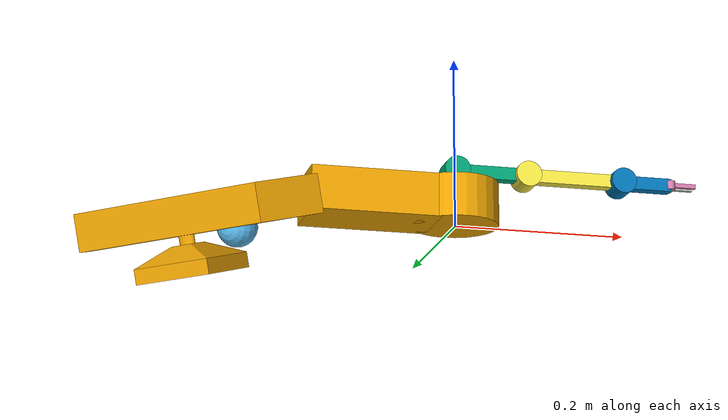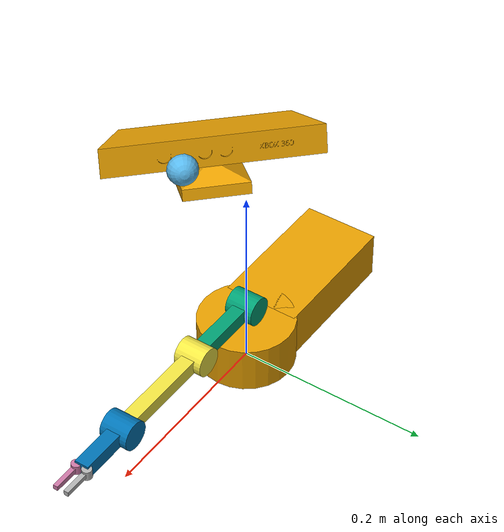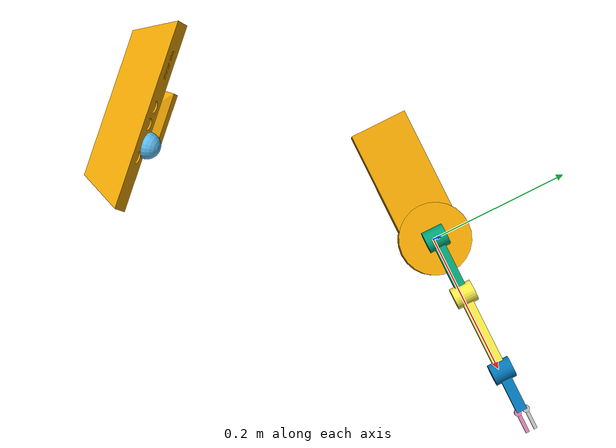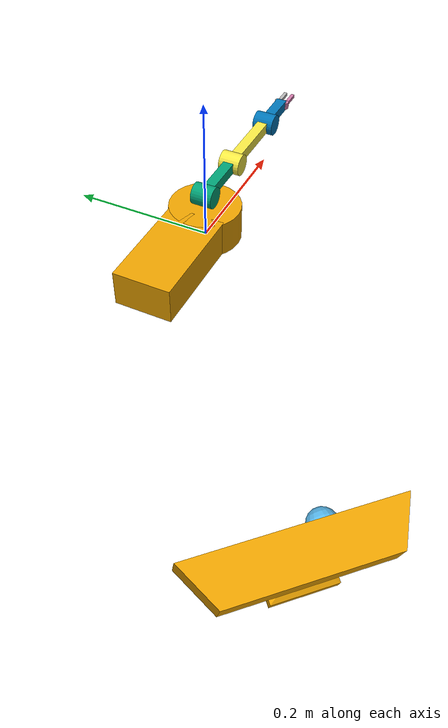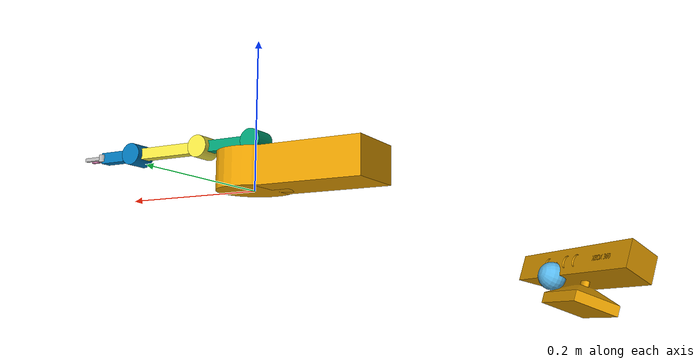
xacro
<?xml version="1.0" ?>

<robot name="owi" xmlns:xacro="http://www.ros.org/wiki/xacro">

  <!-- Macro to generate a link for manipulator, using reference frame of previous joint -->
  <xacro:macro name="alink" params="name radial=0 axial=0 w=0.03" >
    <link name="${name}">
      <!-- elbow -->
      <visual>
        <geometry>
          <cylinder length="${w}" radius="${w/2}" />
        </geometry>
        <origin rpy="0 0 0" xyz="0 0 0" />
      </visual>
      <collision>
        <geometry>
          <cylinder length="${w}" radius="${w/2}" />
        </geometry>
        <origin rpy="0 0 0" xyz="0 0 0" />
      </collision>
      <!-- axial -->
      <visual>
        <geometry>
          <box size="${w/2} ${w/2} ${axial}" />
        </geometry>
        <origin rpy="0 0 0" xyz="0 0 ${axial/2}" />
      </visual>
      <collision>
        <geometry>
          <box size="${w/2} ${w/2} ${axial/2}" />
        </geometry>
        <origin rpy="0 0 0" xyz="0 0 ${axial/2}" />
      </collision>
      <!-- radial -->
      <visual>
        <geometry>
          <box size="${radial} ${w/2} ${w/2}" />
        </geometry>
        <origin rpy="0 0 0" xyz="${radial/2} 0 ${axial}" />
      </visual>
      <collision>
        <geometry>
          <box size="${radial} ${w/2} ${w/2}" />
        </geometry>
        <origin rpy="0 0 0" xyz="${radial/2} 0 ${axial}" />
      </collision>
      <intnertial>
        <mass value="0.1"/>
        <inertia ixx="0.033" iyy="0.033" izz="0.033" ixy="0.0" ixz="0.0" iyz="0.0"/>
      </intnertial>
    </link>
  </xacro:macro>

  <!-- Macro to generate a joint on D-H convention, using reference frame of previous joint -->
  <!-- Assume position theta* = 0, radial and twist are along/around parent x axis -->
  <!-- Use degree for angle -->
  <xacro:macro name="ajoint" params="type parent child radial=0 axial=0 twist=0 lo_limit=-180 hi_limit=180 effort=100 velocity=1 mimic=none">
    <joint name="joint${child}" type="${type}">
      <parent link="${parent}" />
      <child link="${child}" />
      <axis xyz="0 0 1" />
      <origin rpy="${pi*twist/180} 0 0" xyz="${radial} 0 ${axial}" />
      <!-- revolute joint -->
      <xacro:if value="${type == 'revolute'}">
        <limit effort="${effort}" lower="${pi*lo_limit/180}" upper="${pi*hi_limit/180}" velocity="${velocity}" />
      </xacro:if>
      <!-- prismatic joint -->
      <xacro:if value="${type == 'prismatic'}">
        <limit effort="${effort}" lower="${lo_limit}" upper="${hi_limit}" velocity="${velocity}" />
      </xacro:if>
      <!-- mimic joint -->
      <xacro:if value="${mimic != 'none'}">
        <mimic joint="${mimic}" />
      </xacro:if>
    </joint>
  </xacro:macro>

  <!-- robot model  -->
  <link name="base_link">
    <visual>
      <geometry>
        <cylinder length="0.05" radius="0.05" />
      </geometry>
      <origin rpy="0 0 0" xyz="0 0 0.025" />
    </visual>

    <visual>
      <geometry>
        <box size="0.15 0.08 0.05" />
      </geometry>
      <origin rpy="0 0 0" xyz="-0.1 0 0.025" />
    </visual>

    <collision>
      <geometry>
        <cylinder length="0.04" radius="0.05" />
      </geometry>
      <origin rpy="0 0 0" xyz="0 0 0.025" />
    </collision>

    <collision>
      <geometry>
        <box size="0.15 0.08 0.08" />
      </geometry>
      <origin rpy="0 0 0" xyz="-0.1 0 0.04" />
    </collision>

    <intnertial>
      <mass value="0.3"/>
      <inertia ixx="0.1" iyy="0.1" izz="0.1" ixy="0.0" ixz="0.0" iyz="0.0"/>
    </intnertial>
  </link>

  <xacro:ajoint type="revolute" parent="base_link" child="Link1" axial="0.065" lo_limit="-90" hi_limit="90" />
  <link name="Link1" />

  <xacro:ajoint type="revolute" parent="Link1" child="Link2" twist="90" lo_limit="0" hi_limit="180" />

  <xacro:alink name="Link2" radial="0.085" />

  <xacro:ajoint type="revolute" parent="Link2" child="Link3" radial="0.085" lo_limit="-135" hi_limit="135" />

  <xacro:alink name="Link3" radial="0.115" />

  <xacro:ajoint type="revolute" parent="Link3" child="Link4" radial="0.115" lo_limit="-60" hi_limit="60" />

  <xacro:alink name="Link4" radial="0.06" />

  <joint name="dummy_joint" type="revolute">
    <parent link="Link4" />
    <child link="dummy_eef" />
    <axis xyz="0 0 1" />
    <origin rpy="${0.5*pi} 0 0" xyz="0.06 0 0" />
    <limit effort="100" velocity="1" lower="-10" upper="10" />
  </joint>
  <link name="dummy_eef" />

  <xacro:ajoint type="revolute" parent="Link4" child="Rgripper" twist="90" radial="0.06" axial="0.006" lo_limit="0" hi_limit="90" />

  <xacro:ajoint type="revolute" parent="Link4" child="Lgripper" twist="-90" radial="0.06" axial="-0.006" lo_limit="0" hi_limit="90" mimic="jointRgripper" />

  <xacro:alink name="Rgripper" radial="0.03" w="0.01" />

  <xacro:alink name="Lgripper" radial="0.03" w="0.01" />

  <!-- Kinect camera -->
  <joint name="camera_fixed" type="fixed">
    <parent link="base_link" />
    <child link="kinect2_link" />
    <origin rpy="${-0.4*pi} 0 ${-0.25*pi}" xyz="-0.3 -0.3 -0.1" />
  </joint>
  <link name="kinect2_link">
    <visual>
      <origin rpy="${-pi/2} 0 ${pi}" xyz="0.1 0 0" />
      <geometry>
        <mesh filename="package://owi_moveit/meshes/kinect.stl" scale="0.001 0.001 0.001" />
      </geometry>
    </visual>
  </link>

  <!-- Nose marker -->
  <joint name="nose_pos" type="floating">
    <parent link="kinect2_link" />
    <child link="nose_link" />
    <origin rpy="0 0 0" xyz="0 0 0" />
  </joint>
  <link name="nose_link">
      <visual>
      <geometry>
        <sphere radius="0.02" />
      </geometry>
      <origin rpy="0 0 0" xyz="0 0 0" />
    </visual>
  </link>

</robot>
